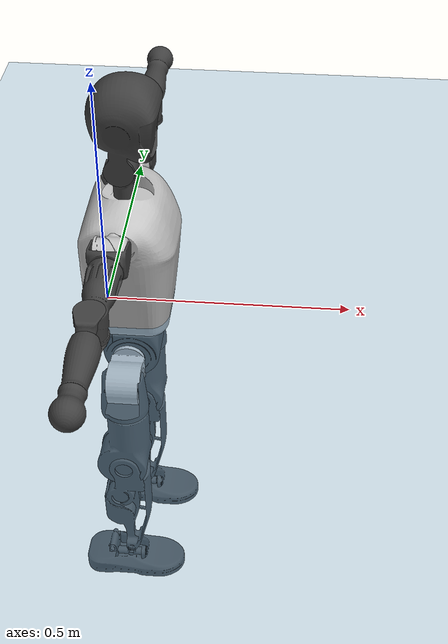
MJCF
<mujoco model="T1">
  <compiler angle="radian" assetdir="assets" balanceinertia="true" inertiafromgeom="false"/>

  <option timestep="0.005" density="1.2" viscosity="2e-05"/>

  <size nkey="1"/>

  <visual>
    <quality shadowsize="8192"/>
    <map shadowclip="0.5"/>
  </visual>

  <default>
    <default class="/">
      <joint armature="0.01" damping="0.01" frictionloss="0.1"/>
      <geom contype="0" conaffinity="0" group="1" solref="-1000 -80"/>
      <site size="0.01 0.005 0.005" group="5"/>
      <general forcelimited="true" biastype="affine" gainprm="25" biasprm="0 -25 -0.6"/>
      <default class="t1">
        <geom rgba="0.25 0.25 0.25 1"/>
        <default class="visual">
          <geom type="mesh" group="2"/>
        </default>
        <default class="collision">
          <geom group="3"/>
        </default>
        <default class="foot">
          <geom size="0.1115 0.05 0.015" type="box" condim="6" group="4" priority="1" solimp="0.015 1 0.015"/>
        </default>
        <default class="reward_collision_sphere">
          <geom group="5" rgba="1 0 0 1"/>
        </default>
      </default>
    </default>
  </default>

  <asset>
    <texture type="skybox" colorspace="auto" name="//unnamed_texture_0" builtin="gradient" rgb1="0.95 0.95 0.95" rgb2="0.95 0.95 0.95" width="100" height="600"/>
    <texture type="2d" colorspace="auto" name="texplane" builtin="checker" rgb1="0.345 0.575 0.748" rgb2="0.345 0.575 0.748" markrgb="1 1 1" width="512" height="512"/>
    <material name="MatPlane" class="/" texture="texplane" texuniform="true" texrepeat="2 2" specular="0.9"/>
    <mesh name="Trunk" class="/" file="Trunk.stl"/>
    <mesh name="H1" class="/" file="H1.stl"/>
    <mesh name="H2" class="/" file="H2.stl"/>
    <mesh name="AL1" class="/" file="AL1.stl"/>
    <mesh name="AL2" class="/" file="AL2.stl"/>
    <mesh name="AL3" class="/" file="AL3.stl"/>
    <mesh name="left_hand_link" class="/" file="left_hand_link.stl"/>
    <mesh name="AR1" class="/" file="AR1.stl"/>
    <mesh name="AR2" class="/" file="AR2.stl"/>
    <mesh name="AR3" class="/" file="AR3.stl"/>
    <mesh name="right_hand_link" class="/" file="right_hand_link.stl"/>
    <mesh name="Waist" class="/" file="Waist.stl"/>
    <mesh name="Hip_Pitch_Left" class="/" file="Hip_Pitch_Left.stl"/>
    <mesh name="Hip_Roll_Left" class="/" file="Hip_Roll_Left.stl"/>
    <mesh name="Hip_Yaw_Left" class="/" file="Hip_Yaw_Left.stl"/>
    <mesh name="Shank_Left" class="/" file="Shank_Left.stl"/>
    <mesh name="Ankle_Cross_Left" class="/" file="Ankle_Cross_Left.stl"/>
    <mesh name="left_foot_link" class="/" file="left_foot_link.stl"/>
    <mesh name="Hip_Pitch_Right" class="/" file="Hip_Pitch_Right.stl"/>
    <mesh name="Hip_Roll_Right" class="/" file="Hip_Roll_Right.stl"/>
    <mesh name="Hip_Yaw_Right" class="/" file="Hip_Yaw_Right.stl"/>
    <mesh name="Shank_Right" class="/" file="Shank_Right.stl"/>
    <mesh name="Ankle_Cross_Right" class="/" file="Ankle_Cross_Right.stl"/>
    <mesh name="right_foot_link" class="/" file="right_foot_link.stl"/>
  </asset>

  <worldbody>
    <geom name="floor" class="/" size="100 100 0.125" type="plane" group="0" material="MatPlane"/>
    <light name="toplight_shadow" class="/" pos="0 0 5" dir="0.0990148 0.0990148 -0.990148" type="directional" ambient="0.04 0.04 0.04" diffuse="0.55 0.55 0.55" specular="0.12 0.12 0.12"/>
    <light name="toplight_fill" class="/" pos="0 0 5" dir="0.0990148 0.0990148 -0.990148" type="directional" castshadow="false" ambient="0.04 0.04 0.04" diffuse="0.3 0.3 0.3" specular="0.08 0.08 0.08"/>
    <body name="trunk" childclass="t1" pos="-0.00052707 0.00282394 -0.00186216" quat="1 0.000674646 -0.000182185 8.63878e-06">
      <inertial pos="0.0408939 -0.00029376 0.111019" quat="0.99996 0.00015835 -0.008893 0.000255482" mass="10.097" diaginertia="0.021538 0.0975625 0.0719784"/>
      <joint name="//unnamed_joint_0" type="free" armature="0" damping="0" frictionloss="0"/>
      <geom name="//unnamed_geom_1" class="visual" rgba="0.76 0.76 0.76 1" mesh="Trunk"/>
      <geom name="//unnamed_geom_2" class="collision" size="0.0717231 0.0956308 0.143446" pos="0.0454043 0 0.127783" type="box"/>
      <geom name="//unnamed_geom_3" class="reward_collision_sphere" size="0.109975" pos="0.0454043 0 0.106486"/>
      <geom name="//unnamed_geom_4" class="reward_collision_sphere" size="0.0143446" pos="0.0454043 0.0890228 0"/>
      <geom name="//unnamed_geom_5" class="reward_collision_sphere" size="0.0143446" pos="0.0454043 -0.0890228 0"/>
      <geom name="//unnamed_geom_6" class="reward_collision_sphere" size="0.0143446" pos="0.0454043 0.112064 0.191674"/>
      <geom name="//unnamed_geom_7" class="reward_collision_sphere" size="0.0143446" pos="0.0454043 -0.112064 0.191674"/>
      <site name="imu" pos="-0.00975226 0.00519764 -0.00177948" size="0.00956308"/>
      <camera name="track" pos="0 -2.09465 0" quat="0.707107 0.707107 0 0" mode="trackcom"/>
      <camera name="ego_camera" pos="0.0923222 0 0.44724" quat="-0.5 -0.5 0.5 0.5"/>
      <body name="H1" pos="0.0489552 -0.000437129 0.260506" quat="0.999999 0.000159646 -0.00110643 0.000160382">
        <inertial pos="0.00127531 0.000622992 0.0617326" quat="0.761553 -0.0107475 0.00365351 0.648003" mass="0.400529" diaginertia="6.1684e-05 0.000289045 0.000197339"/>
        <joint name="AAHead_yaw" pos="0 0 0" axis="-0.00452996 -0.0022518 0.999987" stiffness="0.00127913" range="-1.59217 1.55327" armature="0.00907475" damping="0" frictionloss="0.104386"/>
        <geom name="//unnamed_geom_8" class="visual" mesh="H1"/>
        <body name="H2" pos="-0.00222025 0.000579187 0.0677846" quat="1 0.00061925 -0.00018205 -0.000538751">
          <inertial pos="0.00476089 0.00047408 0.104536" quat="0.988476 0.106213 -0.074059 -0.0784178" mass="0.544855" diaginertia="0.000490414 0.00235637 0.00238139"/>
          <joint name="Head_pitch" pos="0 0 0" axis="0.00449738 -0.999945 -0.0094875" range="-1.27931 0.3874" armature="0.0106871" damping="0.0149148" frictionloss="0.103382"/>
          <geom name="//unnamed_geom_9" class="visual" mesh="H2"/>
          <geom name="//unnamed_geom_10" class="collision" size="0.0765046" pos="0.00756739 0 0.117134"/>
          <geom name="//unnamed_geom_11" class="reward_collision_sphere" size="0.0860677" pos="0.0151348 0 0.106486"/>
        </body>
      </body>
      <body name="AL1" pos="0.0459025 0.11449 0.236192" quat="1 -0.000478453 0.000126877 5.6575e-05">
        <inertial pos="-0.00211369 0.0447376 -0.00270909" quat="0.509199 0.484201 -0.510328 0.495813" mass="0.44819" diaginertia="0.000331026 0.00159379 0.000392021"/>
        <joint name="Left_Shoulder_Pitch" pos="0 0 0" axis="-0.00418204 0.999991 0.00054465" range="-3.30139 1.21794" armature="0.00923893" damping="0.0229125" frictionloss="0.0859991"/>
        <geom name="//unnamed_geom_12" class="visual" rgba="0.76 0.76 0.76 1" mesh="AL1"/>
        <body name="AL2" pos="-0.000451035 0.0496295 -0.00184847" quat="0.999999 -0.000582084 0.000837236 9.08945e-05">
          <inertial pos="0.00125257 0.0399547 -0.00245218" quat="0.487258 0.515079 -0.493797 0.503426" mass="0.145004" diaginertia="9.88782e-05 0.000420842 0.000244214"/>
          <joint name="Left_Shoulder_Roll" pos="0 0 0" axis="-0.999974 -0.00193703 -0.00694392" range="-1.56523 1.73197" armature="0.00921417" damping="0.00321328" frictionloss="0.0865783"/>
          <geom name="//unnamed_geom_13" class="visual" mesh="AL2"/>
          <body name="AL3" pos="-0.00129488 0.0611397 6.78125e-05" quat="1 0.000546311 -0.000201489 0.000166706">
            <inertial pos="-0.00039362 0.0893019 0.00221608" quat="0.706056 0.708154 0.000930651 -0.00134944" mass="0.903487" diaginertia="0.00329075 0.0163723 0.000824565"/>
            <joint name="Left_Elbow_Pitch" pos="0 0 0" axis="0.00197194 -0.99994 0.0108105" range="-2.2795 2.271" armature="0.00916973" damping="0.00830313" frictionloss="0.105506"/>
            <geom name="//unnamed_geom_14" class="visual" mesh="AL3"/>
            <geom name="//unnamed_geom_15" class="collision" size="0.0286892 0.0717231" pos="0 0.0523664 0" quat="0.707105 0.707108 0 0" type="cylinder"/>
            <geom name="//unnamed_geom_16" class="reward_collision_sphere" size="0.0344271"/>
            <body name="left_hand_link" pos="-0.00253117 0.152597 0.0013623" quat="1 -0.00033944 0.000414656 -0.000616417">
              <inertial pos="-4.47151e-05 0.117071 0.00346764" quat="0.709646 0.704557 -0.000133381 0.00134262" mass="0.283703" diaginertia="0.00201956 0.0108046 0.000299164"/>
              <joint name="Left_Elbow_Yaw" pos="0 0 0" axis="0.0124741 -0.000120417 0.999922" range="-2.42275 -0.0117197" armature="0.00923838" damping="0.00830479" frictionloss="0.109045"/>
              <geom name="//unnamed_geom_17" class="visual" mesh="left_hand_link"/>
              <geom name="//unnamed_geom_18" class="collision" size="0.0286892 0.0836769" pos="0 0.136153 0" quat="0.707105 0.707108 0 0" type="cylinder"/>
              <geom name="//unnamed_geom_19" class="reward_collision_sphere" size="0.0478154"/>
              <geom name="//unnamed_geom_20" class="reward_collision_sphere" size="0.0334708" pos="0 0.115206 0"/>
              <geom name="//unnamed_geom_21" class="reward_collision_sphere" size="0.0334708" pos="0 0.225175 0"/>
            </body>
          </body>
        </body>
      </body>
      <body name="AR1" pos="0.0461823 -0.112222 0.236051" quat="0.999999 -0.000786979 0.000911947 0.000162108">
        <inertial pos="-0.00057351 -0.0496726 0.000334991" quat="0.500026 0.504865 -0.49798 0.497093" mass="0.457619" diaginertia="0.000321406 0.00160701 0.000391626"/>
        <joint name="Right_Shoulder_Pitch" pos="0 0 0" axis="0.00846323 -0.999955 0.00421808" range="-1.22599 3.36536" armature="0.00955661" damping="0" frictionloss="0.0907419"/>
        <geom name="//unnamed_geom_22" class="visual" rgba="0.76 0.76 0.76 1" mesh="AR1"/>
        <body name="AR2" pos="-0.00122162 -0.0470335 0.00272646" quat="0.999999 -0.000511449 0.00137728 0.000309292">
          <inertial pos="0.000769512 -0.0396379 0.00321865" quat="0.513155 0.487375 -0.510867 0.488008" mass="0.136162" diaginertia="0.000101581 0.000440133 0.000235377"/>
          <joint name="Right_Shoulder_Roll" pos="0 0 0" axis="-0.999872 0.0157987 -0.00253267" stiffness="0.00362353" range="-1.72304 1.58409" armature="0.00981295" damping="0.0197498" frictionloss="0.107121"/>
          <geom name="//unnamed_geom_23" class="visual" mesh="AR2"/>
          <body name="AR3" pos="0.000497276 -0.0606809 -0.00144486" quat="1 -7.73398e-05 -0.00036125 -9.19749e-05">
            <inertial pos="-0.0018182 -0.0898595 0.000339417" quat="0.713601 0.700459 0.000539805 -0.0114031" mass="0.902832" diaginertia="0.00305531 0.0154379 0.000852013"/>
            <joint name="Right_Elbow_Pitch" pos="0 0 0" axis="-0.0124851 0.999921 -0.00156996" range="-2.26805 2.21366" armature="0.00812726" damping="0.00934825" frictionloss="0.100543"/>
            <geom name="//unnamed_geom_24" class="visual" mesh="AR3"/>
            <geom name="//unnamed_geom_25" class="collision" size="0.0286892 0.0717231" pos="0 -0.0523664 0" quat="0.707105 0.707108 0 0" type="cylinder"/>
            <geom name="//unnamed_geom_26" class="reward_collision_sphere" size="0.0344271"/>
            <body name="right_hand_link" pos="2.2516e-05 -0.154376 0.00183762" quat="1 8.76415e-06 5.50728e-06 -5.70279e-06">
              <inertial pos="-0.00285671 -0.111798 -0.000166624" quat="0.705265 0.708925 0.00519282 0.000422518" mass="0.277201" diaginertia="0.002006 0.009704 0.000294076"/>
              <joint name="Right_Elbow_Yaw" pos="0 0 0" axis="0.00306664 0.000916501 0.999995" range="0.0204713 2.43621" armature="0.0089303" damping="0" frictionloss="0.0907422"/>
              <geom name="//unnamed_geom_27" class="visual" mesh="right_hand_link"/>
              <geom name="//unnamed_geom_28" class="collision" size="0.0286892 0.0836769" pos="0 -0.136153 0" quat="0.707105 0.707108 0 0" type="cylinder"/>
              <geom name="//unnamed_geom_29" class="reward_collision_sphere" size="0.0478154"/>
              <geom name="//unnamed_geom_30" class="reward_collision_sphere" size="0.0334708" pos="0 -0.115206 0"/>
              <geom name="//unnamed_geom_31" class="reward_collision_sphere" size="0.0334708" pos="0 -0.225175 0"/>
            </body>
          </body>
        </body>
      </body>
      <body name="Waist" pos="0.0489716 -0.000251929 -0.120176" quat="1 0.000383306 -9.78228e-05 -5.72487e-05">
        <inertial pos="0.00488562 -0.00102745 0.00996364" quat="0.983487 0.000177636 -0.180944 0.00343024" mass="2.24779" diaginertia="0.0012852 0.00685142 0.00626809"/>
        <joint name="Waist" pos="0 0 0" axis="-0.00152151 -0.000986369 0.999998" range="-1.62616 1.62173" armature="0.00952706" damping="0.000294052" frictionloss="0.093828"/>
        <geom name="//unnamed_geom_32" class="visual" mesh="Waist"/>
        <body name="Hip_Pitch_Left" pos="0.00064916 0.112473 0.00236141" quat="1 0.000408386 0.000247384 -0.000607504">
          <inertial pos="-0.001755 -0.00793606 -0.0208283" quat="0.975285 0.220579 0.0125487 0.00252129" mass="0.913231" diaginertia="0.000462144 0.00181179 0.00170128"/>
          <joint name="Left_Hip_Pitch" pos="0 0 0" axis="-0.0102089 0.999947 -0.00144075" range="-1.74663 1.56829" armature="0.00949628" damping="0" frictionloss="0.0835718"/>
          <geom name="//unnamed_geom_33" class="visual" rgba="0.76 0.76 0.76 1" mesh="Hip_Pitch_Left"/>
          <body name="Hip_Roll_Left" pos="0.00365936 0.00121942 -0.0203685" quat="1 0.000140696 7.20116e-05 1.21535e-05">
            <inertial pos="0.00200251 0.00036767 -0.0566165" quat="0.709789 -0.00671985 0.00448231 0.704368" mass="0.353174" diaginertia="0.000448791 0.00204665 0.000726752"/>
            <joint name="Left_Hip_Roll" pos="0 0 0" axis="-0.99999 0.0028426 -0.00332951" range="-1.51067 0.199706" armature="0.00969975" damping="0.0237125" frictionloss="0.0821179"/>
            <geom name="//unnamed_geom_34" class="visual" mesh="Hip_Roll_Left"/>
            <geom name="//unnamed_geom_35" class="reward_collision_sphere" size="0.0525969"/>
            <body name="Hip_Yaw_Left" pos="-0.00123157 -0.000661871 -0.0863151" quat="1 9.5595e-06 -1.86e-05 1.52275e-05">
              <inertial pos="-0.00451141 -0.000739751 -0.0973048" quat="0.699118 -0.0400357 -0.0289291 0.713298" mass="1.82777" diaginertia="0.00646761 0.0323546 0.00357156"/>
              <joint name="Left_Hip_Yaw" pos="0 0 0" axis="0.00245185 -0.0110976 -0.999935" range="-1.0075 1.06376" armature="0.00818467" damping="0" frictionloss="0.0844277"/>
              <geom name="//unnamed_geom_36" class="visual" mesh="Hip_Yaw_Left"/>
              <geom name="//unnamed_geom_37" class="collision" size="0.0478154 0.0765046" type="cylinder"/>
              <body name="Shank_Left" pos="-0.011533 0.00208519 -0.140867" quat="1 0.000754454 0.000154475 -0.000249146">
                <inertial pos="-0.00199372 -0.000709979 -0.134364" quat="0.997726 0.000770913 -0.0125257 0.0662205" mass="1.55772" diaginertia="0.0091671 0.0454298 0.00259637"/>
                <joint name="Left_Knee_Pitch" pos="0 0 0" axis="0.0160956 0.999822 0.00984158" range="-0.0157002 2.33868" armature="0.0109009" damping="0.00611587" frictionloss="0.0854642"/>
                <geom name="//unnamed_geom_38" class="visual" mesh="Shank_Left"/>
                <geom name="//unnamed_geom_39" class="collision" size="0.0478154 0.0717231" pos="0 0 -0.127783" type="cylinder"/>
                <geom name="//unnamed_geom_40" class="reward_collision_sphere" size="0.06216"/>
                <body name="Ankle_Cross_Left" pos="-0.00175453 -0.00195024 -0.297768" quat="1 1.3008e-05 -4.35078e-05 -4.78688e-05">
                  <inertial pos="-0.00368968 0.000930649 -0.00937368" quat="0.442156 0.544876 0.55443 0.447455" mass="0.0658129" diaginertia="7.22763e-06 3.32234e-05 1.58596e-05"/>
                  <joint name="Left_Ankle_Pitch" pos="0 0 0" axis="0.00495236 0.999943 0.00946121" range="-0.855463 0.301118" armature="0.009692" damping="0.0144473" frictionloss="0.0948578"/>
                  <geom name="//unnamed_geom_41" class="visual" mesh="Ankle_Cross_Left"/>
                  <body name="left_foot_link" pos="0.00229958 -0.000778273 -0.0123976" quat="0.999999 -0.000602245 0.000803178 0.000792558">
                    <inertial pos="-0.000266828 0.000413227 -0.00845264" quat="0.000562392 0.620167 -0.00113333 0.784469" mass="0.566938" diaginertia="0.000633627 0.00298512 0.00284103"/>
                    <joint name="Left_Ankle_Roll" pos="0 0 0" axis="-0.999859 -0.0145986 -0.00833053" stiffness="0.000893598" range="-0.500282 0.484959" armature="0.00968251" damping="0.016214" frictionloss="0.0965577"/>
                    <geom name="//unnamed_geom_42" class="visual" mesh="left_foot_link"/>
                    <geom name="left_foot" class="foot" size="0.113767 0.0508494 0.0159406" pos="0.00756739 0 -0.0159729"/>
                    <geom name="//unnamed_geom_44" class="reward_collision_sphere" size="0.049728" pos="0.00756739 0 -0.0159729"/>
                    <geom name="//unnamed_geom_45" class="reward_collision_sphere" size="0.0286892" pos="0.0718902 -0.0240885 -0.0159729"/>
                    <geom name="//unnamed_geom_46" class="reward_collision_sphere" size="0.0286892" pos="-0.0529717 -0.0240885 -0.0159729"/>
                    <site name="left_foot" class="foot" pos="0.00756739 0 -0.0159729" size="0.00956308"/>
                  </body>
                </body>
              </body>
            </body>
          </body>
        </body>
        <body name="Hip_Pitch_Right" pos="-0.00362042 -0.109496 0.00225467" quat="1 -0.000205701 0.000435837 -0.000716862">
          <inertial pos="0.000379076 0.00649507 -0.0186506" quat="0.973413 -0.22764 0.0250214 -0.00462416" mass="0.899232" diaginertia="0.000446473 0.00186653 0.00177964"/>
          <joint name="Right_Hip_Pitch" pos="0 0 0" axis="-0.00618849 -0.999979 0.00194654" range="-1.51471 1.75069" armature="0.00985752" damping="0.0221122" frictionloss="0.103645"/>
          <geom name="//unnamed_geom_47" class="visual" rgba="0.76 0.76 0.76 1" mesh="Hip_Pitch_Right"/>
          <body name="Hip_Roll_Right" pos="-0.00257224 0.00173692 -0.0184643" quat="1 -8.4357e-05 -0.000265076 0.000163451">
            <inertial pos="0.000280924 -0.000117672 -0.0547286" quat="0.707644 -0.00570191 -0.00621119 0.706519" mass="0.336075" diaginertia="0.000427046 0.00195108 0.000716069"/>
            <joint name="Right_Hip_Roll" pos="0 0 0" axis="-0.999844 -0.0115941 0.0133052" range="-0.143722 1.53403" armature="0.0097532" damping="0" frictionloss="0.108125"/>
            <geom name="//unnamed_geom_48" class="visual" mesh="Hip_Roll_Right"/>
            <geom name="//unnamed_geom_49" class="reward_collision_sphere" size="0.0525969"/>
            <body name="Hip_Yaw_Right" pos="0.00222087 -0.000201249 -0.0849484" quat="1 -8.02165e-05 -0.000138652 -0.000296163">
              <inertial pos="-0.00737388 0.000986049 -0.0954042" quat="0.713257 -0.0336777 -0.033248 0.699303" mass="1.83007" diaginertia="0.00646794 0.0319124 0.00341362"/>
              <joint name="Right_Hip_Yaw" pos="0 0 0" axis="-0.0123462 0.00675437 -0.999901" range="-1.00501 0.997349" armature="0.0093667" damping="0.0196919" frictionloss="0.0948823"/>
              <geom name="//unnamed_geom_50" class="visual" mesh="Hip_Yaw_Right"/>
              <geom name="//unnamed_geom_51" class="collision" size="0.0478154 0.0765046" type="cylinder"/>
              <body name="Shank_Right" pos="-0.0101137 0.00122941 -0.141281" quat="1 -0.000119858 4.47028e-05 -8.76348e-05">
                <inertial pos="-0.00544845 0.0013101 -0.133576" quat="0.999148 -0.00189494 -0.0187001 -0.0367546" mass="1.58674" diaginertia="0.00854293 0.0446237 0.00260573"/>
                <joint name="Right_Knee_Pitch" pos="0 0 0" axis="0.0129096 -0.999917 -0.00033194" stiffness="0.00204587" range="-2.33781 -0.0470151" armature="0.00959648" damping="0.0100281" frictionloss="0.0821034"/>
                <geom name="//unnamed_geom_52" class="visual" mesh="Shank_Right"/>
                <geom name="//unnamed_geom_53" class="collision" size="0.0478154 0.0717231" pos="0 0 -0.127783" type="cylinder"/>
                <geom name="//unnamed_geom_54" class="reward_collision_sphere" size="0.06216"/>
                <body name="Ankle_Cross_Right" pos="-0.00239602 -0.00298179 -0.300863" quat="1 0.000432406 8.09236e-05 -0.000592048">
                  <inertial pos="-0.00174447 -0.00229558 -0.00727103" quat="0.435456 0.558087 0.545285 0.448978" mass="0.0610476" diaginertia="7.16603e-06 3.23329e-05 1.53076e-05"/>
                  <joint name="Right_Ankle_Pitch" pos="0 0 0" axis="0.00208782 -0.999997 0.00147827" range="-0.332268 0.924995" armature="0.00985084" damping="0.0126082" frictionloss="0.0979927"/>
                  <geom name="//unnamed_geom_55" class="visual" mesh="Ankle_Cross_Right"/>
                  <body name="right_foot_link" pos="-0.000339743 -0.00138112 -0.0106851" quat="1 0.000206728 -5.88398e-05 0.000115657">
                    <inertial pos="-0.000705754 -0.00195351 -0.0082397" quat="5.32907e-05 0.618899 -0.00202724 0.785468" mass="0.604526" diaginertia="0.000669552 0.00291099 0.00297369"/>
                    <joint name="Right_Ankle_Roll" pos="0 0 0" axis="-0.999997 -0.00245568 -0.000495343" stiffness="0.000218342" range="-0.454117 0.428717" armature="0.00907362" damping="0" frictionloss="0.100219"/>
                    <geom name="//unnamed_geom_56" class="visual" mesh="right_foot_link"/>
                    <geom name="right_foot" class="foot" size="0.101262 0.0441024 0.0150347" pos="0.00756739 0 -0.0159729"/>
                    <geom name="//unnamed_geom_58" class="reward_collision_sphere" size="0.0382523"/>
                    <geom name="//unnamed_geom_59" class="reward_collision_sphere" size="0.0286892" pos="0.00756739 0 -0.0159729"/>
                    <geom name="//unnamed_geom_60" class="reward_collision_sphere" size="0.0286892" pos="0.0718902 0.0240885 -0.0159729"/>
                    <geom name="//unnamed_geom_61" class="reward_collision_sphere" size="0.0286892" pos="-0.0529717 0.0240885 -0.0159729"/>
                    <site name="right_foot" class="foot" pos="0.00756739 0 -0.0159729" size="0.00956308"/>
                  </body>
                </body>
              </body>
            </body>
          </body>
        </body>
      </body>
    </body>
  </worldbody>

  <contact>
    <pair class="/" geom1="floor" geom2="left_foot" name="//unnamed_contact_0"/>
    <pair class="/" geom1="floor" geom2="right_foot" name="//unnamed_contact_1"/>
  </contact>

  <actuator>
    <general name="AAHead_yaw" class="/" joint="AAHead_yaw" forcerange="-6.80371 6.80371" gainprm="25.5931" biasprm="0 -25.5931 -0.562844"/>
    <general name="Head_pitch" class="/" joint="Head_pitch" forcerange="-7.26759 7.26759" gainprm="25.5931" biasprm="0 -25.5931 -0.562844"/>
    <general name="Left_Shoulder_Pitch" class="/" joint="Left_Shoulder_Pitch" forcerange="-15.689 15.689" gainprm="25.5931" biasprm="0 -25.5931 -0.562844"/>
    <general name="Left_Shoulder_Roll" class="/" joint="Left_Shoulder_Roll" forcerange="-17.493 17.493" gainprm="25.5931" biasprm="0 -25.5931 -0.562844"/>
    <general name="Left_Elbow_Pitch" class="/" joint="Left_Elbow_Pitch" forcerange="-15.7269 15.7269" gainprm="25.5931" biasprm="0 -25.5931 -0.562844"/>
    <general name="Left_Elbow_Yaw" class="/" joint="Left_Elbow_Yaw" forcerange="-17.4059 17.4059" gainprm="25.5931" biasprm="0 -25.5931 -0.562844"/>
    <general name="Right_Shoulder_Pitch" class="/" joint="Right_Shoulder_Pitch" forcerange="-17.4167 17.4167" gainprm="25.5931" biasprm="0 -25.5931 -0.562844"/>
    <general name="Right_Shoulder_Roll" class="/" joint="Right_Shoulder_Roll" forcerange="-19.0013 19.0013" gainprm="25.5931" biasprm="0 -25.5931 -0.562844"/>
    <general name="Right_Elbow_Pitch" class="/" joint="Right_Elbow_Pitch" forcerange="-17.0693 17.0693" gainprm="25.5931" biasprm="0 -25.5931 -0.562844"/>
    <general name="Right_Elbow_Yaw" class="/" joint="Right_Elbow_Yaw" forcerange="-16.5125 16.5125" gainprm="25.5931" biasprm="0 -25.5931 -0.562844"/>
    <general name="Waist" class="/" joint="Waist" forcerange="-28.9324 28.9324" gainprm="25.5931" biasprm="0 -25.5931 -0.562844"/>
    <general name="Left_Hip_Pitch" class="/" joint="Left_Hip_Pitch" forcerange="-43.788 43.788" gainprm="25.5931" biasprm="0 -25.5931 -0.562844"/>
    <general name="Left_Hip_Roll" class="/" joint="Left_Hip_Roll" forcerange="-30.4947 30.4947" gainprm="25.5931" biasprm="0 -25.5931 -0.562844"/>
    <general name="Left_Hip_Yaw" class="/" joint="Left_Hip_Yaw" forcerange="-25.7873 25.7873" gainprm="25.5931" biasprm="0 -25.5931 -0.562844"/>
    <general name="Left_Knee_Pitch" class="/" joint="Left_Knee_Pitch" forcerange="-61.1056 61.1056" gainprm="25.5931" biasprm="0 -25.5931 -0.562844"/>
    <general name="Left_Ankle_Pitch" class="/" joint="Left_Ankle_Pitch" forcerange="-17.1443 17.1443" gainprm="25.5931" biasprm="0 -25.5931 -0.562844"/>
    <general name="Left_Ankle_Roll" class="/" joint="Left_Ankle_Roll" forcerange="-12.931 12.931" gainprm="25.5931" biasprm="0 -25.5931 -0.562844"/>
    <general name="Right_Hip_Pitch" class="/" joint="Right_Hip_Pitch" forcerange="-39.3 39.3" gainprm="25.5931" biasprm="0 -25.5931 -0.562844"/>
    <general name="Right_Hip_Roll" class="/" joint="Right_Hip_Roll" forcerange="-29.5547 29.5547" gainprm="25.5931" biasprm="0 -25.5931 -0.562844"/>
    <general name="Right_Hip_Yaw" class="/" joint="Right_Hip_Yaw" forcerange="-31.8196 31.8196" gainprm="25.5931" biasprm="0 -25.5931 -0.562844"/>
    <general name="Right_Knee_Pitch" class="/" joint="Right_Knee_Pitch" forcerange="-59.0331 59.0331" gainprm="25.5931" biasprm="0 -25.5931 -0.562844"/>
    <general name="Right_Ankle_Pitch" class="/" joint="Right_Ankle_Pitch" forcerange="-19.4651 19.4651" gainprm="25.5931" biasprm="0 -25.5931 -0.562844"/>
    <general name="Right_Ankle_Roll" class="/" joint="Right_Ankle_Roll" forcerange="-14.9115 14.9115" gainprm="25.5931" biasprm="0 -25.5931 -0.562844"/>
  </actuator>

  <sensor>
    <gyro site="imu" name="imu_angular_velocity"/>
    <velocimeter site="imu" name="imu_linear_velocity"/>
    <framelinvel objtype="site" objname="left_foot" name="left_foot_global_linear_velocity"/>
    <framelinvel objtype="site" objname="right_foot" name="right_foot_global_linear_velocity"/>
  </sensor>

  <keyframe>
    <key name="home" qpos="0 0 0.6385 1 0 0 0 0 0 0 1.4 0 -0.4 0 -1.4 0 0.4 0 -0.4 0 0 0.8 -0.4 0 0.4 0 0 -0.8 0.4 0"/>
  </keyframe>
</mujoco>
